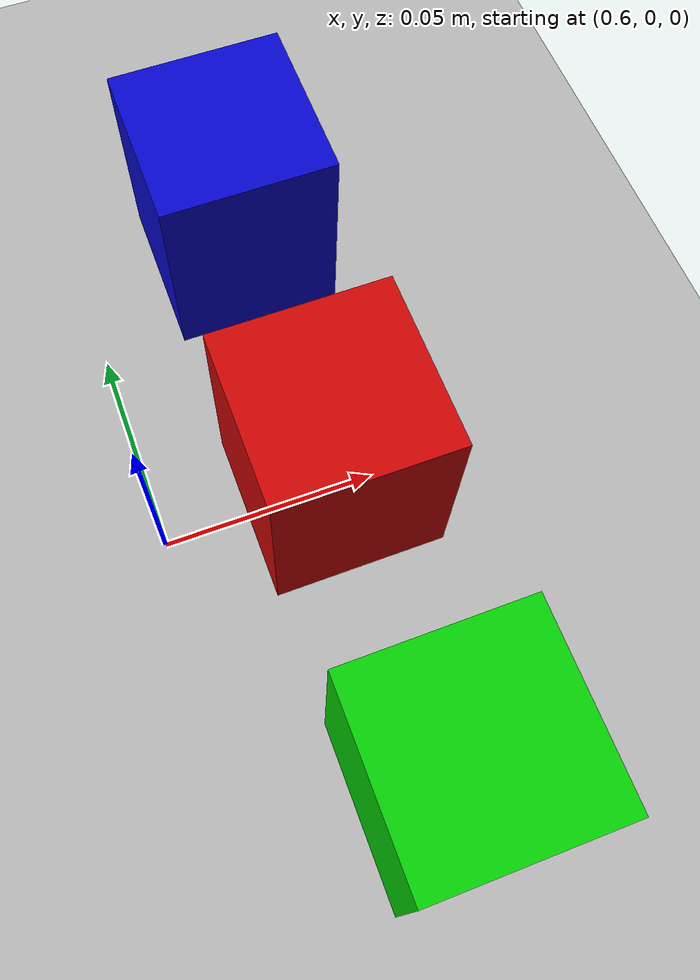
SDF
<sdf version="1.6">
  <world name="mtc_color_grasp">
    <plugin name="state" filename="libgazebo_ros_state.so">
      <ros>
        <namespace>/gazebo</namespace>
      </ros>
      <update_rate>20</update_rate>
    </plugin>
    <gui>
      <camera name="user_camera">
        <pose>1.2 -1.0 0.8 0 0.55 2.18</pose>
        <view_controller>orbit</view_controller>
      </camera>
    </gui>
    <physics type="ode" name="physics">
      <max_step_size>0.001</max_step_size>
      <real_time_update_rate>1000</real_time_update_rate>
    </physics>
    <light name="sun" type="directional">
      <pose>0 0 10 0 0 0</pose>
      <diffuse>0.8 0.8 0.8 1</diffuse>
      <direction>-0.5 0.1 -0.9</direction>
    </light>
    <model name="ground">
      <static>true</static>
      <link name="ground">
        <collision name="ground">
          <geometry>
            <plane>
              <normal>0 0 1</normal>
              <size>20 20</size>
            </plane>
          </geometry>
        </collision>
        <visual name="ground">
          <geometry>
            <plane>
              <normal>0 0 1</normal>
              <size>20 20</size>
            </plane>
          </geometry>
          <material>
            <ambient>0.7 0.7 0.7 1</ambient>
          </material>
        </visual>
      </link>
    </model>
    <model name="cargo_red">
      <pose>0.64 0.0 0.025 0 0 0</pose>
      <link name="box">
        <inertial>
          <mass>0.05</mass>
          <inertia>
            <ixx>0.00002</ixx>
            <iyy>0.00002</iyy>
            <izz>0.00002</izz>
          </inertia>
        </inertial>
        <collision name="box">
          <geometry>
            <box>
              <size>0.04 0.04 0.05</size>
            </box>
          </geometry>
        </collision>
        <visual name="box">
          <geometry>
            <box>
              <size>0.04 0.04 0.05</size>
            </box>
          </geometry>
          <material>
            <ambient>0.8 0.02 0.02 1</ambient>
            <diffuse>0.8 0.02 0.02 1</diffuse>
            <specular>0 0 0 1</specular>
          </material>
        </visual>
      </link>
    </model>
    <model name="cargo_green">
      <pose>0.64 -0.07 0.025 0 0 0</pose>
      <link name="box">
        <inertial>
          <mass>0.05</mass>
          <inertia>
            <ixx>0.00002</ixx>
            <iyy>0.00002</iyy>
            <izz>0.00002</izz>
          </inertia>
        </inertial>
        <collision name="box">
          <geometry>
            <box>
              <size>0.04 0.04 0.05</size>
            </box>
          </geometry>
        </collision>
        <visual name="box">
          <geometry>
            <box>
              <size>0.04 0.04 0.05</size>
            </box>
          </geometry>
          <material>
            <ambient>0.02 0.8 0.02 1</ambient>
            <diffuse>0.02 0.8 0.02 1</diffuse>
            <specular>0 0 0 1</specular>
          </material>
        </visual>
      </link>
    </model>
    <model name="cargo_blue">
      <pose>0.64 0.07 0.025 0 0 0</pose>
      <link name="box">
        <inertial>
          <mass>0.05</mass>
          <inertia>
            <ixx>0.00002</ixx>
            <iyy>0.00002</iyy>
            <izz>0.00002</izz>
          </inertia>
        </inertial>
        <collision name="box">
          <geometry>
            <box>
              <size>0.04 0.04 0.05</size>
            </box>
          </geometry>
        </collision>
        <visual name="box">
          <geometry>
            <box>
              <size>0.04 0.04 0.05</size>
            </box>
          </geometry>
          <material>
            <ambient>0.02 0.02 0.8 1</ambient>
            <diffuse>0.02 0.02 0.8 1</diffuse>
            <specular>0 0 0 1</specular>
          </material>
        </visual>
      </link>
    </model>
  </world>
</sdf>
